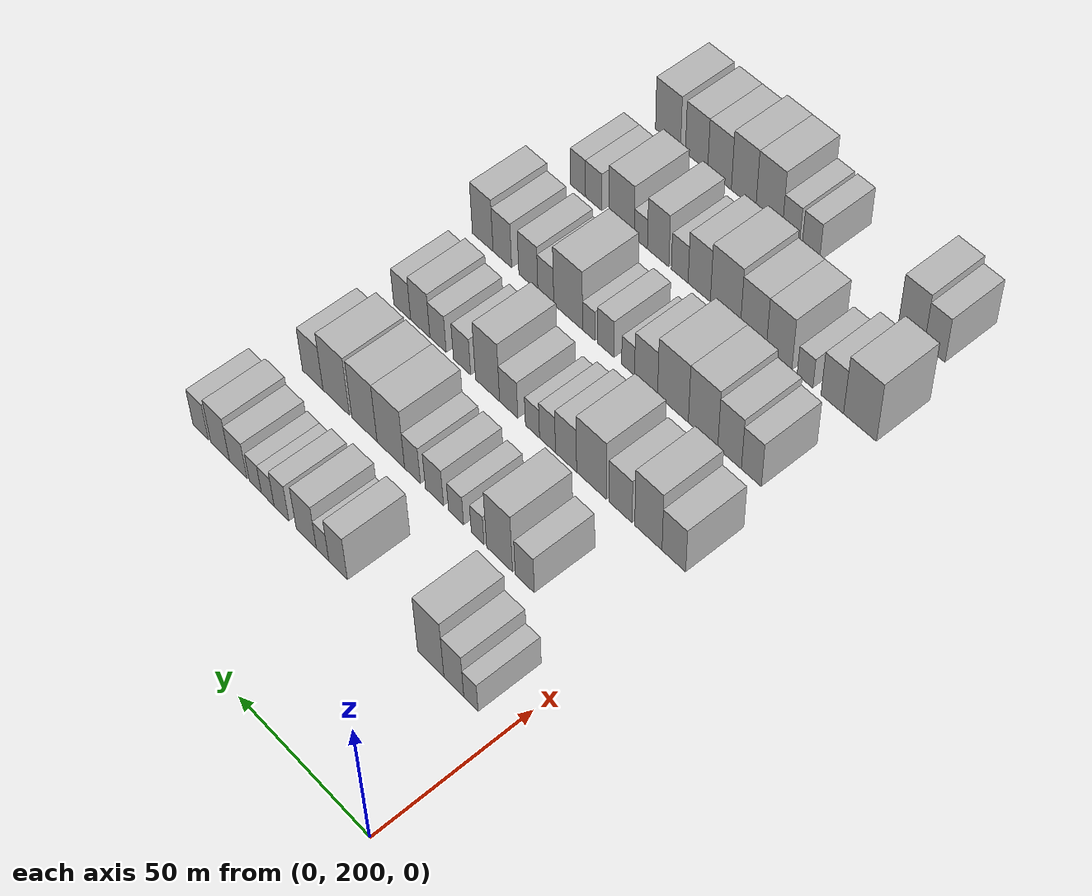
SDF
<sdf version="1.6">
 <world name="default">
  <model name="building_84">
   <static>1</static>
   <pose>50.0000 211.2421 0 0.000000 0.000000 0.000000</pose>
   <link name="link">
    <pose>0 0 6.00 0 0 0</pose>
    <collision name="collision"><geometry><box><size>20.0000 5.3022 12.0000</size></box></geometry></collision>
    <visual name="visual">
     <cast_shadows>0</cast_shadows>
     <geometry><box><size>20.0000 5.3022 12.0000</size></box></geometry>
     <material>
      <script>
       <uri>model://HANNAS_wall/materials/scripts</uri>
       <uri>model://HANNAS_wall/materials/textures</uri>
       <name>vrc/HANNAS_wall</name>
      </script>
     </material>
    </visual>
   </link>
  </model>
  <model name="building_85">
   <static>1</static>
   <pose>50.0000 217.6127 0 0.000000 0.000000 0.000000</pose>
   <link name="link">
    <pose>0 0 9.00 0 0 0</pose>
    <collision name="collision"><geometry><box><size>20.0000 7.4391 18.0000</size></box></geometry></collision>
    <visual name="visual">
     <cast_shadows>0</cast_shadows>
     <geometry><box><size>20.0000 7.4391 18.0000</size></box></geometry>
     <material>
      <script>
       <uri>model://HANNAS_wall/materials/scripts</uri>
       <uri>model://HANNAS_wall/materials/textures</uri>
       <name>vrc/HANNAS_wall</name>
      </script>
     </material>
    </visual>
   </link>
  </model>
  <model name="building_86">
   <static>1</static>
   <pose>50.0000 226.3315 0 0.000000 0.000000 0.000000</pose>
   <link name="link">
    <pose>0 0 12.00 0 0 0</pose>
    <collision name="collision"><geometry><box><size>20.0000 9.9985 24.0000</size></box></geometry></collision>
    <visual name="visual">
     <cast_shadows>0</cast_shadows>
     <geometry><box><size>20.0000 9.9985 24.0000</size></box></geometry>
     <material>
      <script>
       <uri>model://HANNAS_wall/materials/scripts</uri>
       <uri>model://HANNAS_wall/materials/textures</uri>
       <name>vrc/HANNAS_wall</name>
      </script>
     </material>
    </visual>
   </link>
  </model>
  <model name="building_87">
   <static>1</static>
   <pose>50.0000 262.4403 0 0.000000 0.000000 0.000000</pose>
   <link name="link">
    <pose>0 0 9.00 0 0 0</pose>
    <collision name="collision"><geometry><box><size>20.0000 7.4064 18.0000</size></box></geometry></collision>
    <visual name="visual">
     <cast_shadows>0</cast_shadows>
     <geometry><box><size>20.0000 7.4064 18.0000</size></box></geometry>
     <material>
      <script>
       <uri>model://HANNAS_wall/materials/scripts</uri>
       <uri>model://HANNAS_wall/materials/textures</uri>
       <name>vrc/HANNAS_wall</name>
      </script>
     </material>
    </visual>
   </link>
  </model>
  <model name="building_88">
   <static>1</static>
   <pose>50.0000 268.6712 0 0.000000 0.000000 0.000000</pose>
   <link name="link">
    <pose>0 0 6.00 0 0 0</pose>
    <collision name="collision"><geometry><box><size>20.0000 5.0554 12.0000</size></box></geometry></collision>
    <visual name="visual">
     <cast_shadows>0</cast_shadows>
     <geometry><box><size>20.0000 5.0554 12.0000</size></box></geometry>
     <material>
      <script>
       <uri>model://HANNAS_wall/materials/scripts</uri>
       <uri>model://HANNAS_wall/materials/textures</uri>
       <name>vrc/HANNAS_wall</name>
      </script>
     </material>
    </visual>
   </link>
  </model>
  <model name="building_89">
   <static>1</static>
   <pose>50.0000 275.3185 0 0.000000 0.000000 0.000000</pose>
   <link name="link">
    <pose>0 0 9.00 0 0 0</pose>
    <collision name="collision"><geometry><box><size>20.0000 8.2392 18.0000</size></box></geometry></collision>
    <visual name="visual">
     <cast_shadows>0</cast_shadows>
     <geometry><box><size>20.0000 8.2392 18.0000</size></box></geometry>
     <material>
      <script>
       <uri>model://HANNAS_wall/materials/scripts</uri>
       <uri>model://HANNAS_wall/materials/textures</uri>
       <name>vrc/HANNAS_wall</name>
      </script>
     </material>
    </visual>
   </link>
  </model>
  <model name="building_90">
   <static>1</static>
   <pose>50.0000 285.4886 0 0.000000 0.000000 0.000000</pose>
   <link name="link">
    <pose>0 0 7.50 0 0 0</pose>
    <collision name="collision"><geometry><box><size>20.0000 6.1012 15.0000</size></box></geometry></collision>
    <visual name="visual">
     <cast_shadows>0</cast_shadows>
     <geometry><box><size>20.0000 6.1012 15.0000</size></box></geometry>
     <material>
      <script>
       <uri>model://HANNAS_wall/materials/scripts</uri>
       <uri>model://HANNAS_wall/materials/textures</uri>
       <name>vrc/HANNAS_wall</name>
      </script>
     </material>
    </visual>
   </link>
  </model>
  <model name="building_91">
   <static>1</static>
   <pose>50.0000 291.1808 0 0.000000 0.000000 0.000000</pose>
   <link name="link">
    <pose>0 0 6.00 0 0 0</pose>
    <collision name="collision"><geometry><box><size>20.0000 5.2830 12.0000</size></box></geometry></collision>
    <visual name="visual">
     <cast_shadows>0</cast_shadows>
     <geometry><box><size>20.0000 5.2830 12.0000</size></box></geometry>
     <material>
      <script>
       <uri>model://HANNAS_wall/materials/scripts</uri>
       <uri>model://HANNAS_wall/materials/textures</uri>
       <name>vrc/HANNAS_wall</name>
      </script>
     </material>
    </visual>
   </link>
  </model>
  <model name="building_92">
   <static>1</static>
   <pose>50.0000 296.3578 0 0.000000 0.000000 0.000000</pose>
   <link name="link">
    <pose>0 0 6.00 0 0 0</pose>
    <collision name="collision"><geometry><box><size>20.0000 5.0710 12.0000</size></box></geometry></collision>
    <visual name="visual">
     <cast_shadows>0</cast_shadows>
     <geometry><box><size>20.0000 5.0710 12.0000</size></box></geometry>
     <material>
      <script>
       <uri>model://HANNAS_wall/materials/scripts</uri>
       <uri>model://HANNAS_wall/materials/textures</uri>
       <name>vrc/HANNAS_wall</name>
      </script>
     </material>
    </visual>
   </link>
  </model>
  <model name="building_93">
   <static>1</static>
   <pose>50.0000 303.6077 0 0.000000 0.000000 0.000000</pose>
   <link name="link">
    <pose>0 0 7.50 0 0 0</pose>
    <collision name="collision"><geometry><box><size>20.0000 7.4288 15.0000</size></box></geometry></collision>
    <visual name="visual">
     <cast_shadows>0</cast_shadows>
     <geometry><box><size>20.0000 7.4288 15.0000</size></box></geometry>
     <material>
      <script>
       <uri>model://HANNAS_wall/materials/scripts</uri>
       <uri>model://HANNAS_wall/materials/textures</uri>
       <name>vrc/HANNAS_wall</name>
      </script>
     </material>
    </visual>
   </link>
  </model>
  <model name="building_94">
   <static>1</static>
   <pose>50.0000 311.3589 0 0.000000 0.000000 0.000000</pose>
   <link name="link">
    <pose>0 0 9.00 0 0 0</pose>
    <collision name="collision"><geometry><box><size>20.0000 8.0736 18.0000</size></box></geometry></collision>
    <visual name="visual">
     <cast_shadows>0</cast_shadows>
     <geometry><box><size>20.0000 8.0736 18.0000</size></box></geometry>
     <material>
      <script>
       <uri>model://HANNAS_wall/materials/scripts</uri>
       <uri>model://HANNAS_wall/materials/textures</uri>
       <name>vrc/HANNAS_wall</name>
      </script>
     </material>
    </visual>
   </link>
  </model>
  <model name="building_95">
   <static>1</static>
   <pose>50.0000 319.7106 0 0.000000 0.000000 0.000000</pose>
   <link name="link">
    <pose>0 0 7.50 0 0 0</pose>
    <collision name="collision"><geometry><box><size>20.0000 6.6299 15.0000</size></box></geometry></collision>
    <visual name="visual">
     <cast_shadows>0</cast_shadows>
     <geometry><box><size>20.0000 6.6299 15.0000</size></box></geometry>
     <material>
      <script>
       <uri>model://HANNAS_wall/materials/scripts</uri>
       <uri>model://HANNAS_wall/materials/textures</uri>
       <name>vrc/HANNAS_wall</name>
      </script>
     </material>
    </visual>
   </link>
  </model>
  <model name="building_203">
   <static>1</static>
   <pose>82.0000 228.5624 0 0.000000 0.000000 0.000000</pose>
   <link name="link">
    <pose>0 0 7.50 0 0 0</pose>
    <collision name="collision"><geometry><box><size>20.0000 7.2207 15.0000</size></box></geometry></collision>
    <visual name="visual">
     <cast_shadows>0</cast_shadows>
     <geometry><box><size>20.0000 7.2207 15.0000</size></box></geometry>
     <material>
      <script>
       <uri>model://HANNAS_wall/materials/scripts</uri>
       <uri>model://HANNAS_wall/materials/textures</uri>
       <name>vrc/HANNAS_wall</name>
      </script>
     </material>
    </visual>
   </link>
  </model>
  <model name="building_204">
   <static>1</static>
   <pose>82.0000 238.1517 0 0.000000 0.000000 0.000000</pose>
   <link name="link">
    <pose>0 0 12.00 0 0 0</pose>
    <collision name="collision"><geometry><box><size>20.0000 9.9578 24.0000</size></box></geometry></collision>
    <visual name="visual">
     <cast_shadows>0</cast_shadows>
     <geometry><box><size>20.0000 9.9578 24.0000</size></box></geometry>
     <material>
      <script>
       <uri>model://HANNAS_wall/materials/scripts</uri>
       <uri>model://HANNAS_wall/materials/textures</uri>
       <name>vrc/HANNAS_wall</name>
      </script>
     </material>
    </visual>
   </link>
  </model>
  <model name="building_205">
   <static>1</static>
   <pose>82.0000 246.6054 0 0.000000 0.000000 0.000000</pose>
   <link name="link">
    <pose>0 0 6.00 0 0 0</pose>
    <collision name="collision"><geometry><box><size>20.0000 4.9496 12.0000</size></box></geometry></collision>
    <visual name="visual">
     <cast_shadows>0</cast_shadows>
     <geometry><box><size>20.0000 4.9496 12.0000</size></box></geometry>
     <material>
      <script>
       <uri>model://HANNAS_wall/materials/scripts</uri>
       <uri>model://HANNAS_wall/materials/textures</uri>
       <name>vrc/HANNAS_wall</name>
      </script>
     </material>
    </visual>
   </link>
  </model>
  <model name="building_206">
   <static>1</static>
   <pose>82.0000 255.0325 0 0.000000 0.000000 0.000000</pose>
   <link name="link">
    <pose>0 0 6.00 0 0 0</pose>
    <collision name="collision"><geometry><box><size>20.0000 5.9044 12.0000</size></box></geometry></collision>
    <visual name="visual">
     <cast_shadows>0</cast_shadows>
     <geometry><box><size>20.0000 5.9044 12.0000</size></box></geometry>
     <material>
      <script>
       <uri>model://HANNAS_wall/materials/scripts</uri>
       <uri>model://HANNAS_wall/materials/textures</uri>
       <name>vrc/HANNAS_wall</name>
      </script>
     </material>
    </visual>
   </link>
  </model>
  <model name="building_207">
   <static>1</static>
   <pose>82.0000 263.5803 0 0.000000 0.000000 0.000000</pose>
   <link name="link">
    <pose>0 0 7.50 0 0 0</pose>
    <collision name="collision"><geometry><box><size>20.0000 7.1913 15.0000</size></box></geometry></collision>
    <visual name="visual">
     <cast_shadows>0</cast_shadows>
     <geometry><box><size>20.0000 7.1913 15.0000</size></box></geometry>
     <material>
      <script>
       <uri>model://HANNAS_wall/materials/scripts</uri>
       <uri>model://HANNAS_wall/materials/textures</uri>
       <name>vrc/HANNAS_wall</name>
      </script>
     </material>
    </visual>
   </link>
  </model>
  <model name="building_208">
   <static>1</static>
   <pose>82.0000 272.3691 0 0.000000 0.000000 0.000000</pose>
   <link name="link">
    <pose>0 0 7.50 0 0 0</pose>
    <collision name="collision"><geometry><box><size>20.0000 6.3863 15.0000</size></box></geometry></collision>
    <visual name="visual">
     <cast_shadows>0</cast_shadows>
     <geometry><box><size>20.0000 6.3863 15.0000</size></box></geometry>
     <material>
      <script>
       <uri>model://HANNAS_wall/materials/scripts</uri>
       <uri>model://HANNAS_wall/materials/textures</uri>
       <name>vrc/HANNAS_wall</name>
      </script>
     </material>
    </visual>
   </link>
  </model>
  <model name="building_209">
   <static>1</static>
   <pose>82.0000 281.1578 0 0.000000 0.000000 0.000000</pose>
   <link name="link">
    <pose>0 0 12.00 0 0 0</pose>
    <collision name="collision"><geometry><box><size>20.0000 11.1909 24.0000</size></box></geometry></collision>
    <visual name="visual">
     <cast_shadows>0</cast_shadows>
     <geometry><box><size>20.0000 11.1909 24.0000</size></box></geometry>
     <material>
      <script>
       <uri>model://HANNAS_wall/materials/scripts</uri>
       <uri>model://HANNAS_wall/materials/textures</uri>
       <name>vrc/HANNAS_wall</name>
      </script>
     </material>
    </visual>
   </link>
  </model>
  <model name="building_210">
   <static>1</static>
   <pose>82.0000 291.9873 0 0.000000 0.000000 0.000000</pose>
   <link name="link">
    <pose>0 0 12.00 0 0 0</pose>
    <collision name="collision"><geometry><box><size>20.0000 10.4681 24.0000</size></box></geometry></collision>
    <visual name="visual">
     <cast_shadows>0</cast_shadows>
     <geometry><box><size>20.0000 10.4681 24.0000</size></box></geometry>
     <material>
      <script>
       <uri>model://HANNAS_wall/materials/scripts</uri>
       <uri>model://HANNAS_wall/materials/textures</uri>
       <name>vrc/HANNAS_wall</name>
      </script>
     </material>
    </visual>
   </link>
  </model>
  <model name="building_211">
   <static>1</static>
   <pose>82.0000 303.7886 0 0.000000 0.000000 0.000000</pose>
   <link name="link">
    <pose>0 0 12.00 0 0 0</pose>
    <collision name="collision"><geometry><box><size>20.0000 11.1346 24.0000</size></box></geometry></collision>
    <visual name="visual">
     <cast_shadows>0</cast_shadows>
     <geometry><box><size>20.0000 11.1346 24.0000</size></box></geometry>
     <material>
      <script>
       <uri>model://HANNAS_wall/materials/scripts</uri>
       <uri>model://HANNAS_wall/materials/textures</uri>
       <name>vrc/HANNAS_wall</name>
      </script>
     </material>
    </visual>
   </link>
  </model>
  <model name="building_212">
   <static>1</static>
   <pose>82.0000 313.7174 0 0.000000 0.000000 0.000000</pose>
   <link name="link">
    <pose>0 0 9.00 0 0 0</pose>
    <collision name="collision"><geometry><box><size>20.0000 8.7230 18.0000</size></box></geometry></collision>
    <visual name="visual">
     <cast_shadows>0</cast_shadows>
     <geometry><box><size>20.0000 8.7230 18.0000</size></box></geometry>
     <material>
      <script>
       <uri>model://HANNAS_wall/materials/scripts</uri>
       <uri>model://HANNAS_wall/materials/textures</uri>
       <name>vrc/HANNAS_wall</name>
      </script>
     </material>
    </visual>
   </link>
  </model>
  <model name="building_317">
   <static>1</static>
   <pose>114.0000 208.8052 0 0.000000 0.000000 0.000000</pose>
   <link name="link">
    <pose>0 0 9.00 0 0 0</pose>
    <collision name="collision"><geometry><box><size>20.0000 8.6741 18.0000</size></box></geometry></collision>
    <visual name="visual">
     <cast_shadows>0</cast_shadows>
     <geometry><box><size>20.0000 8.6741 18.0000</size></box></geometry>
     <material>
      <script>
       <uri>model://HANNAS_wall/materials/scripts</uri>
       <uri>model://HANNAS_wall/materials/textures</uri>
       <name>vrc/HANNAS_wall</name>
      </script>
     </material>
    </visual>
   </link>
  </model>
  <model name="building_318">
   <static>1</static>
   <pose>114.0000 218.1917 0 0.000000 0.000000 0.000000</pose>
   <link name="link">
    <pose>0 0 12.00 0 0 0</pose>
    <collision name="collision"><geometry><box><size>20.0000 10.0991 24.0000</size></box></geometry></collision>
    <visual name="visual">
     <cast_shadows>0</cast_shadows>
     <geometry><box><size>20.0000 10.0991 24.0000</size></box></geometry>
     <material>
      <script>
       <uri>model://HANNAS_wall/materials/scripts</uri>
       <uri>model://HANNAS_wall/materials/textures</uri>
       <name>vrc/HANNAS_wall</name>
      </script>
     </material>
    </visual>
   </link>
  </model>
  <model name="building_319">
   <static>1</static>
   <pose>114.0000 228.5770 0 0.000000 0.000000 0.000000</pose>
   <link name="link">
    <pose>0 0 9.00 0 0 0</pose>
    <collision name="collision"><geometry><box><size>20.0000 8.6715 18.0000</size></box></geometry></collision>
    <visual name="visual">
     <cast_shadows>0</cast_shadows>
     <geometry><box><size>20.0000 8.6715 18.0000</size></box></geometry>
     <material>
      <script>
       <uri>model://HANNAS_wall/materials/scripts</uri>
       <uri>model://HANNAS_wall/materials/textures</uri>
       <name>vrc/HANNAS_wall</name>
      </script>
     </material>
    </visual>
   </link>
  </model>
  <model name="building_320">
   <static>1</static>
   <pose>114.0000 239.6027 0 0.000000 0.000000 0.000000</pose>
   <link name="link">
    <pose>0 0 12.00 0 0 0</pose>
    <collision name="collision"><geometry><box><size>20.0000 11.3800 24.0000</size></box></geometry></collision>
    <visual name="visual">
     <cast_shadows>0</cast_shadows>
     <geometry><box><size>20.0000 11.3800 24.0000</size></box></geometry>
     <material>
      <script>
       <uri>model://HANNAS_wall/materials/scripts</uri>
       <uri>model://HANNAS_wall/materials/textures</uri>
       <name>vrc/HANNAS_wall</name>
      </script>
     </material>
    </visual>
   </link>
  </model>
  <model name="building_321">
   <static>1</static>
   <pose>114.0000 249.3876 0 0.000000 0.000000 0.000000</pose>
   <link name="link">
    <pose>0 0 9.00 0 0 0</pose>
    <collision name="collision"><geometry><box><size>20.0000 8.1899 18.0000</size></box></geometry></collision>
    <visual name="visual">
     <cast_shadows>0</cast_shadows>
     <geometry><box><size>20.0000 8.1899 18.0000</size></box></geometry>
     <material>
      <script>
       <uri>model://HANNAS_wall/materials/scripts</uri>
       <uri>model://HANNAS_wall/materials/textures</uri>
       <name>vrc/HANNAS_wall</name>
      </script>
     </material>
    </visual>
   </link>
  </model>
  <model name="building_322">
   <static>1</static>
   <pose>114.0000 256.6042 0 0.000000 0.000000 0.000000</pose>
   <link name="link">
    <pose>0 0 7.50 0 0 0</pose>
    <collision name="collision"><geometry><box><size>20.0000 6.2432 15.0000</size></box></geometry></collision>
    <visual name="visual">
     <cast_shadows>0</cast_shadows>
     <geometry><box><size>20.0000 6.2432 15.0000</size></box></geometry>
     <material>
      <script>
       <uri>model://HANNAS_wall/materials/scripts</uri>
       <uri>model://HANNAS_wall/materials/textures</uri>
       <name>vrc/HANNAS_wall</name>
      </script>
     </material>
    </visual>
   </link>
  </model>
  <model name="building_323">
   <static>1</static>
   <pose>114.0000 262.5103 0 0.000000 0.000000 0.000000</pose>
   <link name="link">
    <pose>0 0 6.00 0 0 0</pose>
    <collision name="collision"><geometry><box><size>20.0000 5.5689 12.0000</size></box></geometry></collision>
    <visual name="visual">
     <cast_shadows>0</cast_shadows>
     <geometry><box><size>20.0000 5.5689 12.0000</size></box></geometry>
     <material>
      <script>
       <uri>model://HANNAS_wall/materials/scripts</uri>
       <uri>model://HANNAS_wall/materials/textures</uri>
       <name>vrc/HANNAS_wall</name>
      </script>
     </material>
    </visual>
   </link>
  </model>
  <model name="building_324">
   <static>1</static>
   <pose>114.0000 271.9359 0 0.000000 0.000000 0.000000</pose>
   <link name="link">
    <pose>0 0 7.50 0 0 0</pose>
    <collision name="collision"><geometry><box><size>20.0000 7.2825 15.0000</size></box></geometry></collision>
    <visual name="visual">
     <cast_shadows>0</cast_shadows>
     <geometry><box><size>20.0000 7.2825 15.0000</size></box></geometry>
     <material>
      <script>
       <uri>model://HANNAS_wall/materials/scripts</uri>
       <uri>model://HANNAS_wall/materials/textures</uri>
       <name>vrc/HANNAS_wall</name>
      </script>
     </material>
    </visual>
   </link>
  </model>
  <model name="building_325">
   <static>1</static>
   <pose>114.0000 280.4498 0 0.000000 0.000000 0.000000</pose>
   <link name="link">
    <pose>0 0 12.00 0 0 0</pose>
    <collision name="collision"><geometry><box><size>20.0000 9.7451 24.0000</size></box></geometry></collision>
    <visual name="visual">
     <cast_shadows>0</cast_shadows>
     <geometry><box><size>20.0000 9.7451 24.0000</size></box></geometry>
     <material>
      <script>
       <uri>model://HANNAS_wall/materials/scripts</uri>
       <uri>model://HANNAS_wall/materials/textures</uri>
       <name>vrc/HANNAS_wall</name>
      </script>
     </material>
    </visual>
   </link>
  </model>
  <model name="building_326">
   <static>1</static>
   <pose>114.0000 290.8433 0 0.000000 0.000000 0.000000</pose>
   <link name="link">
    <pose>0 0 7.50 0 0 0</pose>
    <collision name="collision"><geometry><box><size>20.0000 7.0420 15.0000</size></box></geometry></collision>
    <visual name="visual">
     <cast_shadows>0</cast_shadows>
     <geometry><box><size>20.0000 7.0420 15.0000</size></box></geometry>
     <material>
      <script>
       <uri>model://HANNAS_wall/materials/scripts</uri>
       <uri>model://HANNAS_wall/materials/textures</uri>
       <name>vrc/HANNAS_wall</name>
      </script>
     </material>
    </visual>
   </link>
  </model>
  <model name="building_327">
   <static>1</static>
   <pose>114.0000 300.7515 0 0.000000 0.000000 0.000000</pose>
   <link name="link">
    <pose>0 0 7.50 0 0 0</pose>
    <collision name="collision"><geometry><box><size>20.0000 6.7744 15.0000</size></box></geometry></collision>
    <visual name="visual">
     <cast_shadows>0</cast_shadows>
     <geometry><box><size>20.0000 6.7744 15.0000</size></box></geometry>
     <material>
      <script>
       <uri>model://HANNAS_wall/materials/scripts</uri>
       <uri>model://HANNAS_wall/materials/textures</uri>
       <name>vrc/HANNAS_wall</name>
      </script>
     </material>
    </visual>
   </link>
  </model>
  <model name="building_328">
   <static>1</static>
   <pose>114.0000 308.1701 0 0.000000 0.000000 0.000000</pose>
   <link name="link">
    <pose>0 0 9.00 0 0 0</pose>
    <collision name="collision"><geometry><box><size>20.0000 8.0628 18.0000</size></box></geometry></collision>
    <visual name="visual">
     <cast_shadows>0</cast_shadows>
     <geometry><box><size>20.0000 8.0628 18.0000</size></box></geometry>
     <material>
      <script>
       <uri>model://HANNAS_wall/materials/scripts</uri>
       <uri>model://HANNAS_wall/materials/textures</uri>
       <name>vrc/HANNAS_wall</name>
      </script>
     </material>
    </visual>
   </link>
  </model>
  <model name="building_329">
   <static>1</static>
   <pose>114.0000 315.7847 0 0.000000 0.000000 0.000000</pose>
   <link name="link">
    <pose>0 0 7.50 0 0 0</pose>
    <collision name="collision"><geometry><box><size>20.0000 7.1665 15.0000</size></box></geometry></collision>
    <visual name="visual">
     <cast_shadows>0</cast_shadows>
     <geometry><box><size>20.0000 7.1665 15.0000</size></box></geometry>
     <material>
      <script>
       <uri>model://HANNAS_wall/materials/scripts</uri>
       <uri>model://HANNAS_wall/materials/textures</uri>
       <name>vrc/HANNAS_wall</name>
      </script>
     </material>
    </visual>
   </link>
  </model>
  <model name="building_434">
   <static>1</static>
   <pose>146.0000 214.1659 0 0.000000 0.000000 0.000000</pose>
   <link name="link">
    <pose>0 0 9.00 0 0 0</pose>
    <collision name="collision"><geometry><box><size>20.0000 7.3374 18.0000</size></box></geometry></collision>
    <visual name="visual">
     <cast_shadows>0</cast_shadows>
     <geometry><box><size>20.0000 7.3374 18.0000</size></box></geometry>
     <material>
      <script>
       <uri>model://HANNAS_wall/materials/scripts</uri>
       <uri>model://HANNAS_wall/materials/textures</uri>
       <name>vrc/HANNAS_wall</name>
      </script>
     </material>
    </visual>
   </link>
  </model>
  <model name="building_435">
   <static>1</static>
   <pose>146.0000 222.2317 0 0.000000 0.000000 0.000000</pose>
   <link name="link">
    <pose>0 0 10.50 0 0 0</pose>
    <collision name="collision"><geometry><box><size>20.0000 8.7941 21.0000</size></box></geometry></collision>
    <visual name="visual">
     <cast_shadows>0</cast_shadows>
     <geometry><box><size>20.0000 8.7941 21.0000</size></box></geometry>
     <material>
      <script>
       <uri>model://HANNAS_wall/materials/scripts</uri>
       <uri>model://HANNAS_wall/materials/textures</uri>
       <name>vrc/HANNAS_wall</name>
      </script>
     </material>
    </visual>
   </link>
  </model>
  <model name="building_436">
   <static>1</static>
   <pose>146.0000 232.1684 0 0.000000 0.000000 0.000000</pose>
   <link name="link">
    <pose>0 0 12.00 0 0 0</pose>
    <collision name="collision"><geometry><box><size>20.0000 11.0793 24.0000</size></box></geometry></collision>
    <visual name="visual">
     <cast_shadows>0</cast_shadows>
     <geometry><box><size>20.0000 11.0793 24.0000</size></box></geometry>
     <material>
      <script>
       <uri>model://HANNAS_wall/materials/scripts</uri>
       <uri>model://HANNAS_wall/materials/textures</uri>
       <name>vrc/HANNAS_wall</name>
      </script>
     </material>
    </visual>
   </link>
  </model>
  <model name="building_437">
   <static>1</static>
   <pose>146.0000 243.5944 0 0.000000 0.000000 0.000000</pose>
   <link name="link">
    <pose>0 0 12.00 0 0 0</pose>
    <collision name="collision"><geometry><box><size>20.0000 11.7729 24.0000</size></box></geometry></collision>
    <visual name="visual">
     <cast_shadows>0</cast_shadows>
     <geometry><box><size>20.0000 11.7729 24.0000</size></box></geometry>
     <material>
      <script>
       <uri>model://HANNAS_wall/materials/scripts</uri>
       <uri>model://HANNAS_wall/materials/textures</uri>
       <name>vrc/HANNAS_wall</name>
      </script>
     </material>
    </visual>
   </link>
  </model>
  <model name="building_438">
   <static>1</static>
   <pose>146.0000 253.9312 0 0.000000 0.000000 0.000000</pose>
   <link name="link">
    <pose>0 0 9.00 0 0 0</pose>
    <collision name="collision"><geometry><box><size>20.0000 8.9007 18.0000</size></box></geometry></collision>
    <visual name="visual">
     <cast_shadows>0</cast_shadows>
     <geometry><box><size>20.0000 8.9007 18.0000</size></box></geometry>
     <material>
      <script>
       <uri>model://HANNAS_wall/materials/scripts</uri>
       <uri>model://HANNAS_wall/materials/textures</uri>
       <name>vrc/HANNAS_wall</name>
      </script>
     </material>
    </visual>
   </link>
  </model>
  <model name="building_439">
   <static>1</static>
   <pose>146.0000 260.9104 0 0.000000 0.000000 0.000000</pose>
   <link name="link">
    <pose>0 0 6.00 0 0 0</pose>
    <collision name="collision"><geometry><box><size>20.0000 5.0578 12.0000</size></box></geometry></collision>
    <visual name="visual">
     <cast_shadows>0</cast_shadows>
     <geometry><box><size>20.0000 5.0578 12.0000</size></box></geometry>
     <material>
      <script>
       <uri>model://HANNAS_wall/materials/scripts</uri>
       <uri>model://HANNAS_wall/materials/textures</uri>
       <name>vrc/HANNAS_wall</name>
      </script>
     </material>
    </visual>
   </link>
  </model>
  <model name="building_440">
   <static>1</static>
   <pose>146.0000 269.7603 0 0.000000 0.000000 0.000000</pose>
   <link name="link">
    <pose>0 0 7.50 0 0 0</pose>
    <collision name="collision"><geometry><box><size>20.0000 6.6418 15.0000</size></box></geometry></collision>
    <visual name="visual">
     <cast_shadows>0</cast_shadows>
     <geometry><box><size>20.0000 6.6418 15.0000</size></box></geometry>
     <material>
      <script>
       <uri>model://HANNAS_wall/materials/scripts</uri>
       <uri>model://HANNAS_wall/materials/textures</uri>
       <name>vrc/HANNAS_wall</name>
      </script>
     </material>
    </visual>
   </link>
  </model>
  <model name="building_441">
   <static>1</static>
   <pose>146.0000 276.5303 0 0.000000 0.000000 0.000000</pose>
   <link name="link">
    <pose>0 0 6.00 0 0 0</pose>
    <collision name="collision"><geometry><box><size>20.0000 4.8983 12.0000</size></box></geometry></collision>
    <visual name="visual">
     <cast_shadows>0</cast_shadows>
     <geometry><box><size>20.0000 4.8983 12.0000</size></box></geometry>
     <material>
      <script>
       <uri>model://HANNAS_wall/materials/scripts</uri>
       <uri>model://HANNAS_wall/materials/textures</uri>
       <name>vrc/HANNAS_wall</name>
      </script>
     </material>
    </visual>
   </link>
  </model>
  <model name="building_442">
   <static>1</static>
   <pose>146.0000 284.8026 0 0.000000 0.000000 0.000000</pose>
   <link name="link">
    <pose>0 0 12.00 0 0 0</pose>
    <collision name="collision"><geometry><box><size>20.0000 11.6461 24.0000</size></box></geometry></collision>
    <visual name="visual">
     <cast_shadows>0</cast_shadows>
     <geometry><box><size>20.0000 11.6461 24.0000</size></box></geometry>
     <material>
      <script>
       <uri>model://HANNAS_wall/materials/scripts</uri>
       <uri>model://HANNAS_wall/materials/textures</uri>
       <name>vrc/HANNAS_wall</name>
      </script>
     </material>
    </visual>
   </link>
  </model>
  <model name="building_443">
   <static>1</static>
   <pose>146.0000 293.8847 0 0.000000 0.000000 0.000000</pose>
   <link name="link">
    <pose>0 0 7.50 0 0 0</pose>
    <collision name="collision"><geometry><box><size>20.0000 6.5181 15.0000</size></box></geometry></collision>
    <visual name="visual">
     <cast_shadows>0</cast_shadows>
     <geometry><box><size>20.0000 6.5181 15.0000</size></box></geometry>
     <material>
      <script>
       <uri>model://HANNAS_wall/materials/scripts</uri>
       <uri>model://HANNAS_wall/materials/textures</uri>
       <name>vrc/HANNAS_wall</name>
      </script>
     </material>
    </visual>
   </link>
  </model>
  <model name="building_444">
   <static>1</static>
   <pose>146.0000 301.0724 0 0.000000 0.000000 0.000000</pose>
   <link name="link">
    <pose>0 0 9.00 0 0 0</pose>
    <collision name="collision"><geometry><box><size>20.0000 7.8573 18.0000</size></box></geometry></collision>
    <visual name="visual">
     <cast_shadows>0</cast_shadows>
     <geometry><box><size>20.0000 7.8573 18.0000</size></box></geometry>
     <material>
      <script>
       <uri>model://HANNAS_wall/materials/scripts</uri>
       <uri>model://HANNAS_wall/materials/textures</uri>
       <name>vrc/HANNAS_wall</name>
      </script>
     </material>
    </visual>
   </link>
  </model>
  <model name="building_445">
   <static>1</static>
   <pose>146.0000 311.8957 0 0.000000 0.000000 0.000000</pose>
   <link name="link">
    <pose>0 0 9.00 0 0 0</pose>
    <collision name="collision"><geometry><box><size>20.0000 7.7894 18.0000</size></box></geometry></collision>
    <visual name="visual">
     <cast_shadows>0</cast_shadows>
     <geometry><box><size>20.0000 7.7894 18.0000</size></box></geometry>
     <material>
      <script>
       <uri>model://HANNAS_wall/materials/scripts</uri>
       <uri>model://HANNAS_wall/materials/textures</uri>
       <name>vrc/HANNAS_wall</name>
      </script>
     </material>
    </visual>
   </link>
  </model>
  <model name="building_446">
   <static>1</static>
   <pose>146.0000 320.1578 0 0.000000 0.000000 0.000000</pose>
   <link name="link">
    <pose>0 0 10.50 0 0 0</pose>
    <collision name="collision"><geometry><box><size>20.0000 8.7347 21.0000</size></box></geometry></collision>
    <visual name="visual">
     <cast_shadows>0</cast_shadows>
     <geometry><box><size>20.0000 8.7347 21.0000</size></box></geometry>
     <material>
      <script>
       <uri>model://HANNAS_wall/materials/scripts</uri>
       <uri>model://HANNAS_wall/materials/textures</uri>
       <name>vrc/HANNAS_wall</name>
      </script>
     </material>
    </visual>
   </link>
  </model>
  <model name="building_552">
   <static>1</static>
   <pose>178.0000 206.8314 0 0.000000 0.000000 0.000000</pose>
   <link name="link">
    <pose>0 0 12.00 0 0 0</pose>
    <collision name="collision"><geometry><box><size>20.0000 11.9542 24.0000</size></box></geometry></collision>
    <visual name="visual">
     <cast_shadows>0</cast_shadows>
     <geometry><box><size>20.0000 11.9542 24.0000</size></box></geometry>
     <material>
      <script>
       <uri>model://HANNAS_wall/materials/scripts</uri>
       <uri>model://HANNAS_wall/materials/textures</uri>
       <name>vrc/HANNAS_wall</name>
      </script>
     </material>
    </visual>
   </link>
  </model>
  <model name="building_553">
   <static>1</static>
   <pose>178.0000 216.9546 0 0.000000 0.000000 0.000000</pose>
   <link name="link">
    <pose>0 0 9.00 0 0 0</pose>
    <collision name="collision"><geometry><box><size>20.0000 8.2921 18.0000</size></box></geometry></collision>
    <visual name="visual">
     <cast_shadows>0</cast_shadows>
     <geometry><box><size>20.0000 8.2921 18.0000</size></box></geometry>
     <material>
      <script>
       <uri>model://HANNAS_wall/materials/scripts</uri>
       <uri>model://HANNAS_wall/materials/textures</uri>
       <name>vrc/HANNAS_wall</name>
      </script>
     </material>
    </visual>
   </link>
  </model>
  <model name="building_554">
   <static>1</static>
   <pose>178.0000 227.0490 0 0.000000 0.000000 0.000000</pose>
   <link name="link">
    <pose>0 0 6.00 0 0 0</pose>
    <collision name="collision"><geometry><box><size>20.0000 5.8968 12.0000</size></box></geometry></collision>
    <visual name="visual">
     <cast_shadows>0</cast_shadows>
     <geometry><box><size>20.0000 5.8968 12.0000</size></box></geometry>
     <material>
      <script>
       <uri>model://HANNAS_wall/materials/scripts</uri>
       <uri>model://HANNAS_wall/materials/textures</uri>
       <name>vrc/HANNAS_wall</name>
      </script>
     </material>
    </visual>
   </link>
  </model>
  <model name="building_555">
   <static>1</static>
   <pose>178.0000 236.8228 0 0.000000 0.000000 0.000000</pose>
   <link name="link">
    <pose>0 0 10.50 0 0 0</pose>
    <collision name="collision"><geometry><box><size>20.0000 9.6506 21.0000</size></box></geometry></collision>
    <visual name="visual">
     <cast_shadows>0</cast_shadows>
     <geometry><box><size>20.0000 9.6506 21.0000</size></box></geometry>
     <material>
      <script>
       <uri>model://HANNAS_wall/materials/scripts</uri>
       <uri>model://HANNAS_wall/materials/textures</uri>
       <name>vrc/HANNAS_wall</name>
      </script>
     </material>
    </visual>
   </link>
  </model>
  <model name="building_556">
   <static>1</static>
   <pose>178.0000 246.5964 0 0.000000 0.000000 0.000000</pose>
   <link name="link">
    <pose>0 0 10.50 0 0 0</pose>
    <collision name="collision"><geometry><box><size>20.0000 9.8968 21.0000</size></box></geometry></collision>
    <visual name="visual">
     <cast_shadows>0</cast_shadows>
     <geometry><box><size>20.0000 9.8968 21.0000</size></box></geometry>
     <material>
      <script>
       <uri>model://HANNAS_wall/materials/scripts</uri>
       <uri>model://HANNAS_wall/materials/textures</uri>
       <name>vrc/HANNAS_wall</name>
      </script>
     </material>
    </visual>
   </link>
  </model>
  <model name="building_557">
   <static>1</static>
   <pose>178.0000 257.3903 0 0.000000 0.000000 0.000000</pose>
   <link name="link">
    <pose>0 0 12.00 0 0 0</pose>
    <collision name="collision"><geometry><box><size>20.0000 11.6911 24.0000</size></box></geometry></collision>
    <visual name="visual">
     <cast_shadows>0</cast_shadows>
     <geometry><box><size>20.0000 11.6911 24.0000</size></box></geometry>
     <material>
      <script>
       <uri>model://HANNAS_wall/materials/scripts</uri>
       <uri>model://HANNAS_wall/materials/textures</uri>
       <name>vrc/HANNAS_wall</name>
      </script>
     </material>
    </visual>
   </link>
  </model>
  <model name="building_558">
   <static>1</static>
   <pose>178.0000 267.6200 0 0.000000 0.000000 0.000000</pose>
   <link name="link">
    <pose>0 0 10.50 0 0 0</pose>
    <collision name="collision"><geometry><box><size>20.0000 8.7683 21.0000</size></box></geometry></collision>
    <visual name="visual">
     <cast_shadows>0</cast_shadows>
     <geometry><box><size>20.0000 8.7683 21.0000</size></box></geometry>
     <material>
      <script>
       <uri>model://HANNAS_wall/materials/scripts</uri>
       <uri>model://HANNAS_wall/materials/textures</uri>
       <name>vrc/HANNAS_wall</name>
      </script>
     </material>
    </visual>
   </link>
  </model>
  <model name="building_559">
   <static>1</static>
   <pose>178.0000 275.3313 0 0.000000 0.000000 0.000000</pose>
   <link name="link">
    <pose>0 0 7.50 0 0 0</pose>
    <collision name="collision"><geometry><box><size>20.0000 6.6542 15.0000</size></box></geometry></collision>
    <visual name="visual">
     <cast_shadows>0</cast_shadows>
     <geometry><box><size>20.0000 6.6542 15.0000</size></box></geometry>
     <material>
      <script>
       <uri>model://HANNAS_wall/materials/scripts</uri>
       <uri>model://HANNAS_wall/materials/textures</uri>
       <name>vrc/HANNAS_wall</name>
      </script>
     </material>
    </visual>
   </link>
  </model>
  <model name="building_560">
   <static>1</static>
   <pose>178.0000 283.9714 0 0.000000 0.000000 0.000000</pose>
   <link name="link">
    <pose>0 0 10.50 0 0 0</pose>
    <collision name="collision"><geometry><box><size>20.0000 8.6260 21.0000</size></box></geometry></collision>
    <visual name="visual">
     <cast_shadows>0</cast_shadows>
     <geometry><box><size>20.0000 8.6260 21.0000</size></box></geometry>
     <material>
      <script>
       <uri>model://HANNAS_wall/materials/scripts</uri>
       <uri>model://HANNAS_wall/materials/textures</uri>
       <name>vrc/HANNAS_wall</name>
      </script>
     </material>
    </visual>
   </link>
  </model>
  <model name="building_561">
   <static>1</static>
   <pose>178.0000 290.9553 0 0.000000 0.000000 0.000000</pose>
   <link name="link">
    <pose>0 0 6.00 0 0 0</pose>
    <collision name="collision"><geometry><box><size>20.0000 5.3417 12.0000</size></box></geometry></collision>
    <visual name="visual">
     <cast_shadows>0</cast_shadows>
     <geometry><box><size>20.0000 5.3417 12.0000</size></box></geometry>
     <material>
      <script>
       <uri>model://HANNAS_wall/materials/scripts</uri>
       <uri>model://HANNAS_wall/materials/textures</uri>
       <name>vrc/HANNAS_wall</name>
      </script>
     </material>
    </visual>
   </link>
  </model>
  <model name="building_562">
   <static>1</static>
   <pose>178.0000 298.7627 0 0.000000 0.000000 0.000000</pose>
   <link name="link">
    <pose>0 0 10.50 0 0 0</pose>
    <collision name="collision"><geometry><box><size>20.0000 10.2731 21.0000</size></box></geometry></collision>
    <visual name="visual">
     <cast_shadows>0</cast_shadows>
     <geometry><box><size>20.0000 10.2731 21.0000</size></box></geometry>
     <material>
      <script>
       <uri>model://HANNAS_wall/materials/scripts</uri>
       <uri>model://HANNAS_wall/materials/textures</uri>
       <name>vrc/HANNAS_wall</name>
      </script>
     </material>
    </visual>
   </link>
  </model>
  <model name="building_563">
   <static>1</static>
   <pose>178.0000 310.3045 0 0.000000 0.000000 0.000000</pose>
   <link name="link">
    <pose>0 0 7.50 0 0 0</pose>
    <collision name="collision"><geometry><box><size>20.0000 6.8106 15.0000</size></box></geometry></collision>
    <visual name="visual">
     <cast_shadows>0</cast_shadows>
     <geometry><box><size>20.0000 6.8106 15.0000</size></box></geometry>
     <material>
      <script>
       <uri>model://HANNAS_wall/materials/scripts</uri>
       <uri>model://HANNAS_wall/materials/textures</uri>
       <name>vrc/HANNAS_wall</name>
      </script>
     </material>
    </visual>
   </link>
  </model>
  <model name="building_564">
   <static>1</static>
   <pose>178.0000 316.8323 0 0.000000 0.000000 0.000000</pose>
   <link name="link">
    <pose>0 0 7.50 0 0 0</pose>
    <collision name="collision"><geometry><box><size>20.0000 6.2451 15.0000</size></box></geometry></collision>
    <visual name="visual">
     <cast_shadows>0</cast_shadows>
     <geometry><box><size>20.0000 6.2451 15.0000</size></box></geometry>
     <material>
      <script>
       <uri>model://HANNAS_wall/materials/scripts</uri>
       <uri>model://HANNAS_wall/materials/textures</uri>
       <name>vrc/HANNAS_wall</name>
      </script>
     </material>
    </visual>
   </link>
  </model>
  <model name="building_672">
   <static>1</static>
   <pose>210.0000 210.6095 0 0.000000 0.000000 0.000000</pose>
   <link name="link">
    <pose>0 0 9.00 0 0 0</pose>
    <collision name="collision"><geometry><box><size>20.0000 7.5638 18.0000</size></box></geometry></collision>
    <visual name="visual">
     <cast_shadows>0</cast_shadows>
     <geometry><box><size>20.0000 7.5638 18.0000</size></box></geometry>
     <material>
      <script>
       <uri>model://HANNAS_wall/materials/scripts</uri>
       <uri>model://HANNAS_wall/materials/textures</uri>
       <name>vrc/HANNAS_wall</name>
      </script>
     </material>
    </visual>
   </link>
  </model>
  <model name="building_673">
   <static>1</static>
   <pose>210.0000 219.1691 0 0.000000 0.000000 0.000000</pose>
   <link name="link">
    <pose>0 0 10.50 0 0 0</pose>
    <collision name="collision"><geometry><box><size>20.0000 9.5554 21.0000</size></box></geometry></collision>
    <visual name="visual">
     <cast_shadows>0</cast_shadows>
     <geometry><box><size>20.0000 9.5554 21.0000</size></box></geometry>
     <material>
      <script>
       <uri>model://HANNAS_wall/materials/scripts</uri>
       <uri>model://HANNAS_wall/materials/textures</uri>
       <name>vrc/HANNAS_wall</name>
      </script>
     </material>
    </visual>
   </link>
  </model>
  <model name="building_674">
   <static>1</static>
   <pose>210.0000 257.1392 0 0.000000 0.000000 0.000000</pose>
   <link name="link">
    <pose>0 0 7.50 0 0 0</pose>
    <collision name="collision"><geometry><box><size>20.0000 6.7950 15.0000</size></box></geometry></collision>
    <visual name="visual">
     <cast_shadows>0</cast_shadows>
     <geometry><box><size>20.0000 6.7950 15.0000</size></box></geometry>
     <material>
      <script>
       <uri>model://HANNAS_wall/materials/scripts</uri>
       <uri>model://HANNAS_wall/materials/textures</uri>
       <name>vrc/HANNAS_wall</name>
      </script>
     </material>
    </visual>
   </link>
  </model>
  <model name="building_675">
   <static>1</static>
   <pose>210.0000 264.9136 0 0.000000 0.000000 0.000000</pose>
   <link name="link">
    <pose>0 0 7.50 0 0 0</pose>
    <collision name="collision"><geometry><box><size>20.0000 6.7539 15.0000</size></box></geometry></collision>
    <visual name="visual">
     <cast_shadows>0</cast_shadows>
     <geometry><box><size>20.0000 6.7539 15.0000</size></box></geometry>
     <material>
      <script>
       <uri>model://HANNAS_wall/materials/scripts</uri>
       <uri>model://HANNAS_wall/materials/textures</uri>
       <name>vrc/HANNAS_wall</name>
      </script>
     </material>
    </visual>
   </link>
  </model>
  <model name="building_676">
   <static>1</static>
   <pose>210.0000 273.5227 0 0.000000 0.000000 0.000000</pose>
   <link name="link">
    <pose>0 0 12.00 0 0 0</pose>
    <collision name="collision"><geometry><box><size>20.0000 10.4642 24.0000</size></box></geometry></collision>
    <visual name="visual">
     <cast_shadows>0</cast_shadows>
     <geometry><box><size>20.0000 10.4642 24.0000</size></box></geometry>
     <material>
      <script>
       <uri>model://HANNAS_wall/materials/scripts</uri>
       <uri>model://HANNAS_wall/materials/textures</uri>
       <name>vrc/HANNAS_wall</name>
      </script>
     </material>
    </visual>
   </link>
  </model>
  <model name="building_677">
   <static>1</static>
   <pose>210.0000 283.6507 0 0.000000 0.000000 0.000000</pose>
   <link name="link">
    <pose>0 0 12.00 0 0 0</pose>
    <collision name="collision"><geometry><box><size>20.0000 9.7917 24.0000</size></box></geometry></collision>
    <visual name="visual">
     <cast_shadows>0</cast_shadows>
     <geometry><box><size>20.0000 9.7917 24.0000</size></box></geometry>
     <material>
      <script>
       <uri>model://HANNAS_wall/materials/scripts</uri>
       <uri>model://HANNAS_wall/materials/textures</uri>
       <name>vrc/HANNAS_wall</name>
      </script>
     </material>
    </visual>
   </link>
  </model>
  <model name="building_678">
   <static>1</static>
   <pose>210.0000 293.3489 0 0.000000 0.000000 0.000000</pose>
   <link name="link">
    <pose>0 0 10.50 0 0 0</pose>
    <collision name="collision"><geometry><box><size>20.0000 9.6046 21.0000</size></box></geometry></collision>
    <visual name="visual">
     <cast_shadows>0</cast_shadows>
     <geometry><box><size>20.0000 9.6046 21.0000</size></box></geometry>
     <material>
      <script>
       <uri>model://HANNAS_wall/materials/scripts</uri>
       <uri>model://HANNAS_wall/materials/textures</uri>
       <name>vrc/HANNAS_wall</name>
      </script>
     </material>
    </visual>
   </link>
  </model>
  <model name="building_679">
   <static>1</static>
   <pose>210.0000 302.7311 0 0.000000 0.000000 0.000000</pose>
   <link name="link">
    <pose>0 0 10.50 0 0 0</pose>
    <collision name="collision"><geometry><box><size>20.0000 9.1598 21.0000</size></box></geometry></collision>
    <visual name="visual">
     <cast_shadows>0</cast_shadows>
     <geometry><box><size>20.0000 9.1598 21.0000</size></box></geometry>
     <material>
      <script>
       <uri>model://HANNAS_wall/materials/scripts</uri>
       <uri>model://HANNAS_wall/materials/textures</uri>
       <name>vrc/HANNAS_wall</name>
      </script>
     </material>
    </visual>
   </link>
  </model>
  <model name="building_680">
   <static>1</static>
   <pose>210.0000 314.5193 0 0.000000 0.000000 0.000000</pose>
   <link name="link">
    <pose>0 0 10.50 0 0 0</pose>
    <collision name="collision"><geometry><box><size>20.0000 10.4166 21.0000</size></box></geometry></collision>
    <visual name="visual">
     <cast_shadows>0</cast_shadows>
     <geometry><box><size>20.0000 10.4166 21.0000</size></box></geometry>
     <material>
      <script>
       <uri>model://HANNAS_wall/materials/scripts</uri>
       <uri>model://HANNAS_wall/materials/textures</uri>
       <name>vrc/HANNAS_wall</name>
      </script>
     </material>
    </visual>
   </link>
  </model>
 </world>
</sdf>
